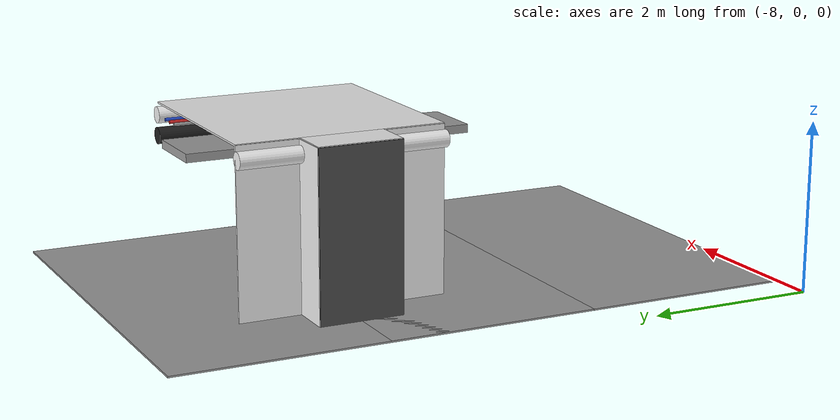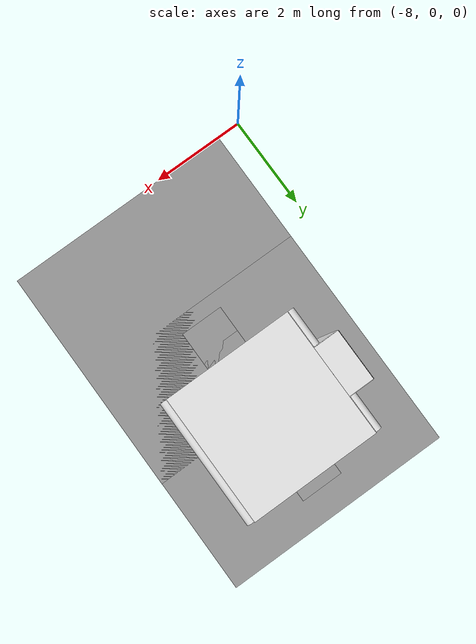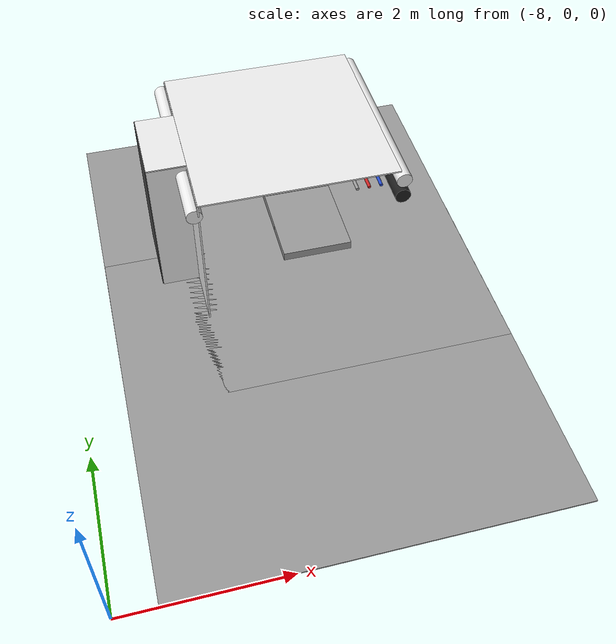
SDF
<sdf version="1.6">
 <world name="default">
  <model name="ceiling_1_-2_1_1_2">
   <pose>-5.0 3.5 1.7 0.0 0.0 3.14</pose>
   <link name="link_1">
    <visual name="visual">
     <geometry><box><size>0.8 1 0.1</size></box></geometry>
     <material>
      <script><uri>file://media/materials/scripts/gazebo.material</uri><name>Gazebo/Grey</name></script>
     </material>
    </visual>
    <collision name="collision"><geometry><box><size>0.8 1 0.1</size></box></geometry></collision>
   </link>
   <static>1</static>
  </model>
  <model name="wall_bottom_-2_1_0_2">
   <static>1</static>
   <pose>-5.0 2.5 0.0 0.0 0.0 1.57</pose>
   <link name="link">
    <collision name="collision"><geometry><box><size>5.0 5.0 0.02</size></box></geometry></collision>
    <visual name="visual">
     <material>
      <script><name>Gazebo/Grey</name><uri>file://media/materials/scripts/gazebo.material</uri></script>
     </material>
     <geometry><box><size>5.0 5.0 0.02</size></box></geometry>
    </visual>
   </link>
  </model>
  <model name="wall_top_-2_2_0_1">
   <static>1</static>
   <pose>-5.0 5.0 2.0 1.57 0.0 0.0</pose>
   <link name="link">
    <collision name="collision"><geometry><box><size>2.5 0.02 2.5</size></box></geometry></collision>
    <visual name="visual">
     <material>
      <script><name>Gazebo/White</name><uri>file://media/materials/scripts/gazebo.material</uri></script>
     </material>
     <geometry><box><size>2.5 0.02 2.5</size></box></geometry>
    </visual>
   </link>
  </model>
  <model name="ceiling_1_-2_2_0_1">
   <pose>-5.0 5.0 1.7 0.0 0.0 0.0</pose>
   <link name="link_1">
    <visual name="visual">
     <geometry><box><size>0.8 1 0.1</size></box></geometry>
     <material>
      <script><uri>file://media/materials/scripts/gazebo.material</uri><name>Gazebo/Grey</name></script>
     </material>
    </visual>
    <collision name="collision"><geometry><box><size>0.8 1 0.1</size></box></geometry></collision>
   </link>
   <static>1</static>
  </model>
  <model name="ceiling_1_-2_2_1_1">
   <pose>-5.0 4.0 1.7 0.0 0.0 0.0</pose>
   <link name="link_1">
    <visual name="visual">
     <geometry><box><size>0.8 1 0.1</size></box></geometry>
     <material>
      <script><uri>file://media/materials/scripts/gazebo.material</uri><name>Gazebo/Grey</name></script>
     </material>
    </visual>
    <collision name="collision"><geometry><box><size>0.8 1 0.1</size></box></geometry></collision>
   </link>
   <static>1</static>
  </model>
  <model name="ceiling_1_-2_2_2_1">
   <pose>-5.0 6.0 1.7 0.0 0.0 0.0</pose>
   <link name="link_1">
    <visual name="visual">
     <geometry><box><size>0.8 1 0.1</size></box></geometry>
     <material>
      <script><uri>file://media/materials/scripts/gazebo.material</uri><name>Gazebo/Grey</name></script>
     </material>
    </visual>
    <collision name="collision"><geometry><box><size>0.8 1 0.1</size></box></geometry></collision>
   </link>
   <static>1</static>
  </model>
  <model name="white_pipe_left_-2_2_0_1">
   <static>1</static>
   <pose>-5.0 5.0 1.84 0.0 0.0 0.0</pose>
   <link name="link_0">
    <visual name="visual">
     <pose>-1.3 0 0 1.57 0 0</pose>
     <geometry><cylinder><radius>0.1</radius><length>2.5</length></cylinder></geometry>
     <material>
      <script><uri>file://media/materials/scripts/gazebo.material</uri><name>Gazebo/White</name></script>
     </material>
    </visual>
    <collision name="collision">
     <pose>-1.3 0 0 1.57 0 0</pose>
     <geometry><cylinder><radius>0.1</radius><length>2.5</length></cylinder></geometry>
    </collision>
   </link>
  </model>
  <model name="white_pipe_right_-2_2_0_1">
   <static>1</static>
   <pose>-5.0 5.0 1.84 0.0 0.0 0.0</pose>
   <link name="link_0">
    <visual name="visual">
     <pose>1.3 0 0 1.57 0 0</pose>
     <geometry><cylinder><radius>0.1</radius><length>2.5</length></cylinder></geometry>
     <material>
      <script><uri>file://media/materials/scripts/gazebo.material</uri><name>Gazebo/White</name></script>
     </material>
    </visual>
    <collision name="collision">
     <pose>1.3 0 0 1.57 0 0</pose>
     <geometry><cylinder><radius>0.1</radius><length>2.5</length></cylinder></geometry>
    </collision>
   </link>
  </model>
  <model name="black_pipe_right_-2_2_0_1">
   <static>1</static>
   <pose>-5.0 5.0 1.84 0.0 0.0 0.0</pose>
   <link name="link_0">
    <visual name="visual">
     <pose>1.3 0 -0.25 1.57 0 0</pose>
     <geometry><cylinder><radius>0.1</radius><length>2.5</length></cylinder></geometry>
     <material>
      <script><uri>file://media/materials/scripts/gazebo.material</uri><name>Gazebo/Black</name></script>
     </material>
    </visual>
    <collision name="collision">
     <pose>1.3 0 -0.25 1.57 0 0</pose>
     <geometry><cylinder><radius>0.1</radius><length>2.5</length></cylinder></geometry>
    </collision>
   </link>
  </model>
  <model name="grey_pipe_right_-2_2_0_1">
   <static>1</static>
   <pose>-5.0 5.0 1.84 0.0 0.0 0.0</pose>
   <link name="link_0">
    <visual name="visual">
     <pose>0.7 0 0 1.57 0 0</pose>
     <geometry><cylinder><radius>0.02</radius><length>2.5</length></cylinder></geometry>
     <material>
      <script><uri>file://media/materials/scripts/gazebo.material</uri><name>Gazebo/Grey</name></script>
     </material>
    </visual>
    <collision name="collision">
     <pose>0.7 0 0 1.57 0 0</pose>
     <geometry><cylinder><radius>0.02</radius><length>2.5</length></cylinder></geometry>
    </collision>
   </link>
  </model>
  <model name="red_pipe_right_-2_2_0_1">
   <static>1</static>
   <pose>-5.0 5.0 1.84 0.0 0.0 0.0</pose>
   <link name="link_0">
    <visual name="visual">
     <pose>0.85 0 0 1.57 0 0</pose>
     <geometry><cylinder><radius>0.02</radius><length>2.5</length></cylinder></geometry>
     <material>
      <script><uri>file://media/materials/scripts/gazebo.material</uri><name>Gazebo/Red</name></script>
     </material>
    </visual>
    <collision name="collision">
     <pose>0.85 0 0 1.57 0 0</pose>
     <geometry><cylinder><radius>0.02</radius><length>2.5</length></cylinder></geometry>
    </collision>
   </link>
  </model>
  <model name="blue_pipe_right_-2_2_0_1">
   <static>1</static>
   <pose>-5.0 5.0 1.84 0.0 0.0 0.0</pose>
   <link name="link_0">
    <visual name="visual">
     <pose>1 0 0 1.57 0 0</pose>
     <geometry><cylinder><radius>0.02</radius><length>2.5</length></cylinder></geometry>
     <material>
      <script><uri>file://media/materials/scripts/gazebo.material</uri><name>Gazebo/Blue</name></script>
     </material>
    </visual>
    <collision name="collision">
     <pose>1 0 0 1.57 0 0</pose>
     <geometry><cylinder><radius>0.02</radius><length>2.5</length></cylinder></geometry>
    </collision>
   </link>
  </model>
  <model name="wall_left_front_left_-2_2_0_1">
   <static>1</static>
   <pose>-6.25 5.875 1.0 0.0 0.0 1.57</pose>
   <link name="link">
    <collision name="collision"><geometry><box><size>0.75 0.02 2.0</size></box></geometry></collision>
    <visual name="visual">
     <material>
      <script><name>Gazebo/White</name><uri>file://media/materials/scripts/gazebo.material</uri></script>
     </material>
     <geometry><box><size>0.75 0.02 2.0</size></box></geometry>
    </visual>
   </link>
  </model>
  <model name="wall_left_front_right_-2_2_0_1">
   <static>1</static>
   <pose>-6.25 4.125 1.0 0.0 0.0 1.57</pose>
   <link name="link">
    <collision name="collision"><geometry><box><size>0.75 0.02 2.0</size></box></geometry></collision>
    <visual name="visual">
     <material>
      <script><name>Gazebo/White</name><uri>file://media/materials/scripts/gazebo.material</uri></script>
     </material>
     <geometry><box><size>0.75 0.02 2.0</size></box></geometry>
    </visual>
   </link>
  </model>
  <model name="wall_left_front_up_-2_2_0_1">
   <static>1</static>
   <pose>-6.25 5.0 2.0 0.0 0.0 1.57</pose>
   <link name="link">
    <collision name="collision"><geometry><box><size>1.0 0.02 0.001</size></box></geometry></collision>
    <visual name="visual">
     <material>
      <script><name>Gazebo/White</name><uri>file://media/materials/scripts/gazebo.material</uri></script>
     </material>
     <geometry><box><size>1.0 0.02 0.001</size></box></geometry>
    </visual>
   </link>
  </model>
  <model name="wall_left_inside_back_-2_2_0_1">
   <static>1</static>
   <pose>-6.75 5.0 1.0 0.0 0.0 1.57</pose>
   <link name="link">
    <collision name="collision"><geometry><box><size>1 0.02 2</size></box></geometry></collision>
    <visual name="visual">
     <material>
      <script><name>Gazebo/DarkGrey</name><uri>file://media/materials/scripts/gazebo.material</uri></script>
     </material>
     <geometry><box><size>1 0.02 2</size></box></geometry>
    </visual>
   </link>
  </model>
  <model name="wall_left_inside_left_-2_2_0_1">
   <static>1</static>
   <pose>-6.5 5.5 1.0 0.0 0.0 0.0</pose>
   <link name="link">
    <collision name="collision"><geometry><box><size>0.5 0.02 2</size></box></geometry></collision>
    <visual name="visual">
     <material>
      <script><name>Gazebo/White</name><uri>file://media/materials/scripts/gazebo.material</uri></script>
     </material>
     <geometry><box><size>0.5 0.02 2</size></box></geometry>
    </visual>
   </link>
  </model>
  <model name="wall_left_inside_right_-2_2_0_1">
   <static>1</static>
   <pose>-6.5 4.5 1.0 0.0 0.0 0.0</pose>
   <link name="link">
    <collision name="collision"><geometry><box><size>0.5 0.02 2</size></box></geometry></collision>
    <visual name="visual">
     <material>
      <script><name>Gazebo/White</name><uri>file://media/materials/scripts/gazebo.material</uri></script>
     </material>
     <geometry><box><size>0.5 0.02 2</size></box></geometry>
    </visual>
   </link>
  </model>
  <model name="wall_left_inside_top_-2_2_0_1">
   <static>1</static>
   <pose>-6.5 5.0 2.0 1.57 0.0 1.57</pose>
   <link name="link">
    <collision name="collision"><geometry><box><size>1 0.02 0.5</size></box></geometry></collision>
    <visual name="visual">
     <material>
      <script><name>Gazebo/White</name><uri>file://media/materials/scripts/gazebo.material</uri></script>
     </material>
     <geometry><box><size>1 0.02 0.5</size></box></geometry>
    </visual>
   </link>
  </model>
  <model name="wall_bottom_-2_2_0_1">
   <static>1</static>
   <pose>-5.0 5.0 0.0 0.0 0.0 0.0</pose>
   <link name="link">
    <collision name="collision"><geometry><box><size>5.0 5.0 0.02</size></box></geometry></collision>
    <visual name="visual">
     <material>
      <script><name>Gazebo/Grey</name><uri>file://media/materials/scripts/gazebo.material</uri></script>
     </material>
     <geometry><box><size>5.0 5.0 0.02</size></box></geometry>
    </visual>
   </link>
  </model>
 </world>
</sdf>
